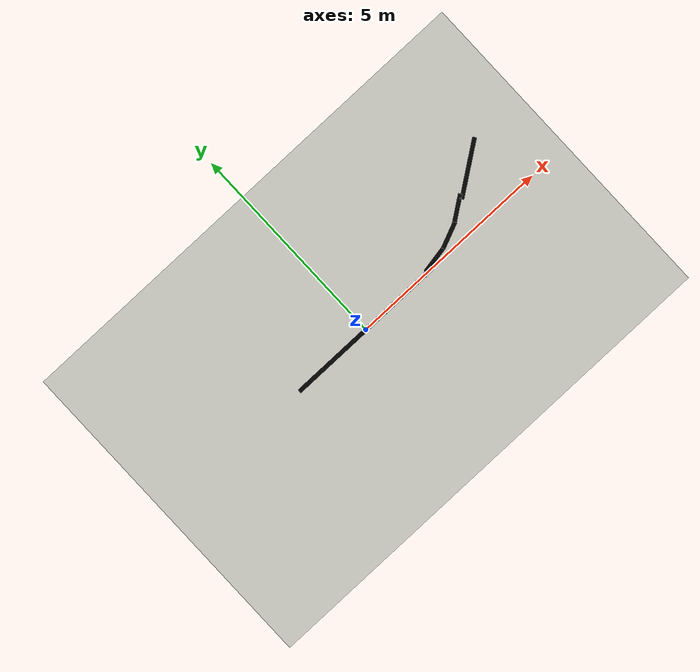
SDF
<?xml version="1.0" ?>
<sdf version="1.6">
  <world name="line_follow_track">
    <include>
      <uri>model://sun</uri>
    </include>

    <model name="matte_test_floor">
      <static>true</static>
      <link name="floor_link">
        <collision name="floor_collision">
          <geometry>
            <box>
              <size>12.0 8.0 0.02</size>
            </box>
          </geometry>
        </collision>
        <visual name="floor_visual">
          <geometry>
            <box>
              <size>12.0 8.0 0.02</size>
            </box>
          </geometry>
          <material>
            <ambient>0.82 0.82 0.78 1.0</ambient>
            <diffuse>0.82 0.82 0.78 1.0</diffuse>
            <specular>0.04 0.04 0.04 1.0</specular>
          </material>
        </visual>
      </link>
    </model>

    <model name="black_guide_line">
      <static>true</static>
      <link name="line_link">
        <visual name="line_straight_0">
          <pose>0.0 0.0 0.017 0 0 0</pose>
          <geometry>
            <box>
              <size>4.0 0.10 0.012</size>
            </box>
          </geometry>
          <material>
            <ambient>0.01 0.01 0.01 1.0</ambient>
            <diffuse>0.01 0.01 0.01 1.0</diffuse>
            <specular>0 0 0 1.0</specular>
          </material>
        </visual>
        <visual name="line_curve_1">
          <pose>2.15 0.10 0.018 0 0 0.18</pose>
          <geometry>
            <box>
              <size>0.65 0.10 0.012</size>
            </box>
          </geometry>
          <material>
            <ambient>0.01 0.01 0.01 1.0</ambient>
            <diffuse>0.01 0.01 0.01 1.0</diffuse>
            <specular>0 0 0 1.0</specular>
          </material>
        </visual>
        <visual name="line_curve_2">
          <pose>2.76 0.28 0.018 0 0 0.40</pose>
          <geometry>
            <box>
              <size>0.65 0.10 0.012</size>
            </box>
          </geometry>
          <material>
            <ambient>0.01 0.01 0.01 1.0</ambient>
            <diffuse>0.01 0.01 0.01 1.0</diffuse>
            <specular>0 0 0 1.0</specular>
          </material>
        </visual>
        <visual name="line_curve_3">
          <pose>3.31 0.60 0.018 0 0 0.62</pose>
          <geometry>
            <box>
              <size>0.65 0.10 0.012</size>
            </box>
          </geometry>
          <material>
            <ambient>0.01 0.01 0.01 1.0</ambient>
            <diffuse>0.01 0.01 0.01 1.0</diffuse>
            <specular>0 0 0 1.0</specular>
          </material>
        </visual>
        <visual name="line_after_curve">
          <pose>4.08 1.08 0.018 0 0 0.62</pose>
          <geometry>
            <box>
              <size>1.4 0.10 0.012</size>
            </box>
          </geometry>
          <material>
            <ambient>0.01 0.01 0.01 1.0</ambient>
            <diffuse>0.01 0.01 0.01 1.0</diffuse>
            <specular>0 0 0 1.0</specular>
          </material>
        </visual>
      </link>
    </model>

    <plugin name="gazebo_ros_state" filename="libgazebo_ros_state.so">
      <ros>
        <namespace>/</namespace>
      </ros>
      <update_rate>20.0</update_rate>
    </plugin>
  </world>
</sdf>
